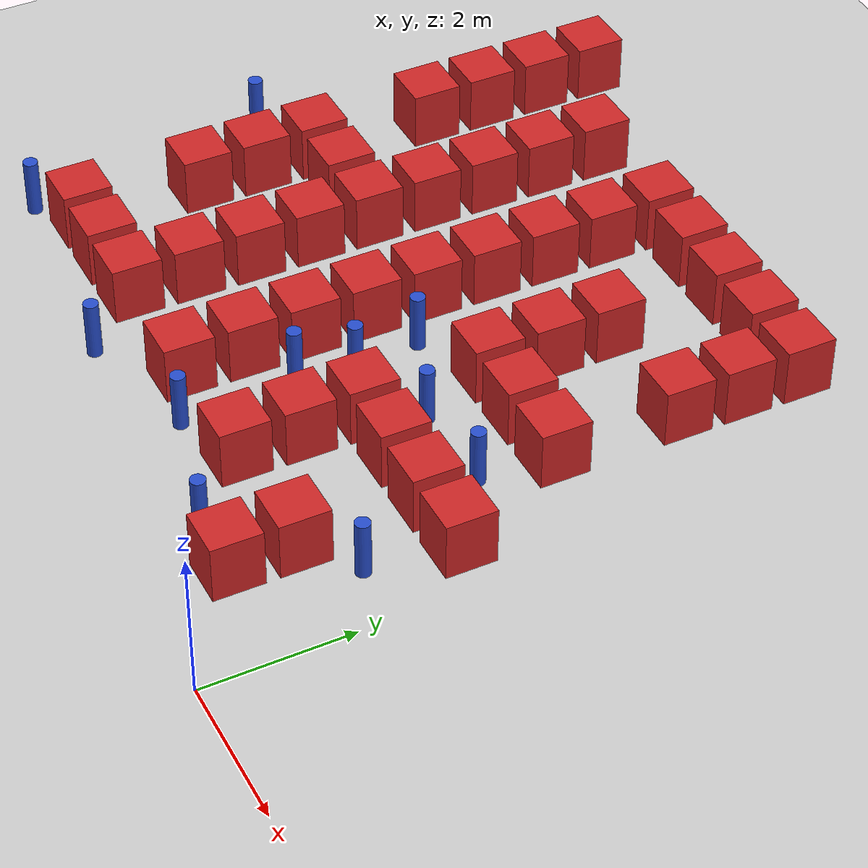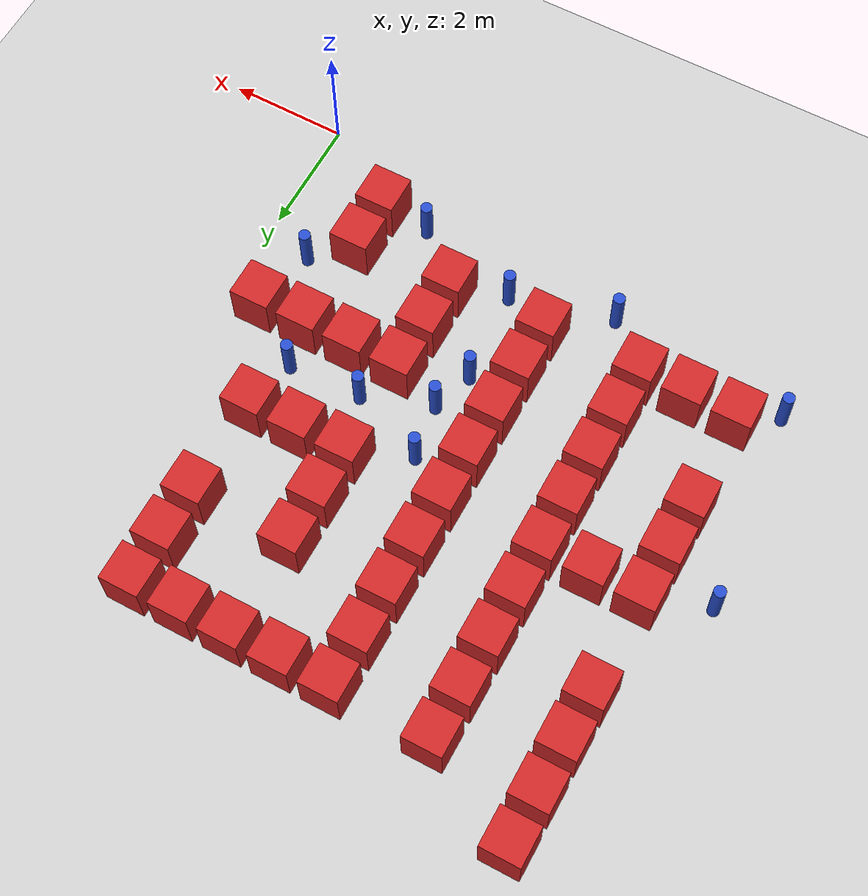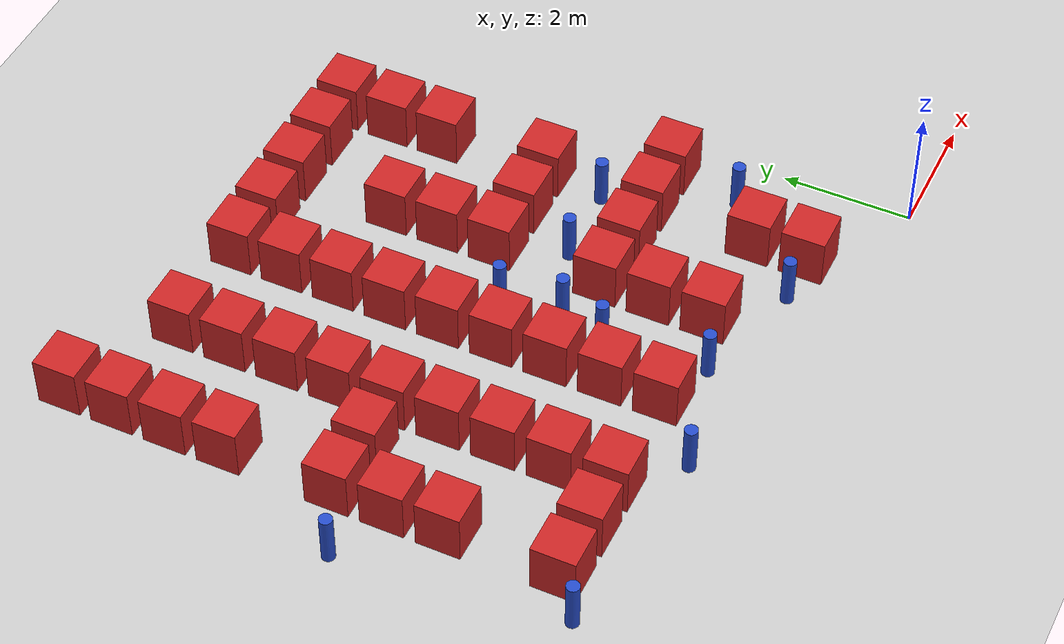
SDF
<sdf version="1.6">
 <world name="default">
  <model name="ground_plane">
   <static>1</static>
   <link name="link">
    <collision name="collision">
     <geometry><plane><normal>0 0 1</normal><size>100 100</size></plane></geometry>
     <surface><friction><ode><mu>100</mu><mu2>50</mu2></ode></friction></surface>
    </collision>
    <visual name="visual">
     <cast_shadows>0</cast_shadows>
     <geometry><plane><normal>0 0 1</normal><size>100 100</size></plane></geometry>
     <material>
      <script><uri>file://media/materials/scripts/gazebo.material</uri><name>Gazebo/Grey</name></script>
     </material>
    </visual>
   </link>
  </model>
  <model name="box_obstacle11">
   <static>0</static>
   <link name="link">
    <pose>0 0 0.1 0 -0 0</pose>
    <inertial>
     <mass>100</mass>
     <inertia>
      <ixx>0.166667</ixx>
      <ixy>0</ixy>
      <ixz>0</ixz>
      <iyy>0.166667</iyy>
      <iyz>0</iyz>
      <izz>0.166667</izz>
     </inertia>
    </inertial>
    <collision name="collision"><geometry><box><size>0.675 0.675 0.8</size></box></geometry></collision>
    <visual name="visual">
     <geometry><box><size>0.675 0.675 0.8</size></box></geometry>
     <material>
      <script><name>Gazebo/Red</name><uri>file://media/materials/scripts/gazebo.material</uri></script>
     </material>
    </visual>
   </link>
   <pose>-8.30097 1.89865 0.299996 4e-06 -0 0.001125</pose>
  </model>
  <model name="box_obstacle12">
   <static>0</static>
   <link name="link">
    <pose>0 0 0.1 0 -0 0</pose>
    <inertial>
     <mass>100</mass>
     <inertia>
      <ixx>0.166667</ixx>
      <ixy>0</ixy>
      <ixz>0</ixz>
      <iyy>0.166667</iyy>
      <iyz>0</iyz>
      <izz>0.166667</izz>
     </inertia>
    </inertial>
    <collision name="collision"><geometry><box><size>0.675 0.675 0.8</size></box></geometry></collision>
    <visual name="visual">
     <geometry><box><size>0.675 0.675 0.8</size></box></geometry>
     <material>
      <script><name>Gazebo/Red</name><uri>file://media/materials/scripts/gazebo.material</uri></script>
     </material>
    </visual>
   </link>
   <pose>-8.30097 3.59865 0.299996 4e-06 -0 0.001125</pose>
  </model>
  <model name="box_obstacle13">
   <static>0</static>
   <link name="link">
    <pose>0 0 0.1 0 -0 0</pose>
    <inertial>
     <mass>100</mass>
     <inertia>
      <ixx>0.166667</ixx>
      <ixy>0</ixy>
      <ixz>0</ixz>
      <iyy>0.166667</iyy>
      <iyz>0</iyz>
      <izz>0.166667</izz>
     </inertia>
    </inertial>
    <collision name="collision"><geometry><box><size>0.675 0.675 0.8</size></box></geometry></collision>
    <visual name="visual">
     <geometry><box><size>0.675 0.675 0.8</size></box></geometry>
     <material>
      <script><name>Gazebo/Red</name><uri>file://media/materials/scripts/gazebo.material</uri></script>
     </material>
    </visual>
   </link>
   <pose>-8.30097 4.44865 0.299996 4e-06 -0 0.001125</pose>
  </model>
  <model name="box_obstacle14">
   <static>0</static>
   <link name="link">
    <pose>0 0 0.1 0 -0 0</pose>
    <inertial>
     <mass>100</mass>
     <inertia>
      <ixx>0.166667</ixx>
      <ixy>0</ixy>
      <ixz>0</ixz>
      <iyy>0.166667</iyy>
      <iyz>0</iyz>
      <izz>0.166667</izz>
     </inertia>
    </inertial>
    <collision name="collision"><geometry><box><size>0.675 0.675 0.8</size></box></geometry></collision>
    <visual name="visual">
     <geometry><box><size>0.675 0.675 0.8</size></box></geometry>
     <material>
      <script><name>Gazebo/Red</name><uri>file://media/materials/scripts/gazebo.material</uri></script>
     </material>
    </visual>
   </link>
   <pose>-8.30097 5.29865 0.299996 4e-06 -0 0.001125</pose>
  </model>
  <model name="box_obstacle15">
   <static>0</static>
   <link name="link">
    <pose>0 0 0.1 0 -0 0</pose>
    <inertial>
     <mass>100</mass>
     <inertia>
      <ixx>0.166667</ixx>
      <ixy>0</ixy>
      <ixz>0</ixz>
      <iyy>0.166667</iyy>
      <iyz>0</iyz>
      <izz>0.166667</izz>
     </inertia>
    </inertial>
    <collision name="collision"><geometry><box><size>0.675 0.675 0.8</size></box></geometry></collision>
    <visual name="visual">
     <geometry><box><size>0.675 0.675 0.8</size></box></geometry>
     <material>
      <script><name>Gazebo/Red</name><uri>file://media/materials/scripts/gazebo.material</uri></script>
     </material>
    </visual>
   </link>
   <pose>-8.30097 6.99865 0.299996 4e-06 -0 0.001125</pose>
  </model>
  <model name="box_obstacle16">
   <static>0</static>
   <link name="link">
    <pose>0 0 0.1 0 -0 0</pose>
    <inertial>
     <mass>100</mass>
     <inertia>
      <ixx>0.166667</ixx>
      <ixy>0</ixy>
      <ixz>0</ixz>
      <iyy>0.166667</iyy>
      <iyz>0</iyz>
      <izz>0.166667</izz>
     </inertia>
    </inertial>
    <collision name="collision"><geometry><box><size>0.675 0.675 0.8</size></box></geometry></collision>
    <visual name="visual">
     <geometry><box><size>0.675 0.675 0.8</size></box></geometry>
     <material>
      <script><name>Gazebo/Red</name><uri>file://media/materials/scripts/gazebo.material</uri></script>
     </material>
    </visual>
   </link>
   <pose>-8.30097 7.84865 0.299996 4e-06 -0 0.001125</pose>
  </model>
  <model name="box_obstacle17">
   <static>0</static>
   <link name="link">
    <pose>0 0 0.1 0 -0 0</pose>
    <inertial>
     <mass>100</mass>
     <inertia>
      <ixx>0.166667</ixx>
      <ixy>0</ixy>
      <ixz>0</ixz>
      <iyy>0.166667</iyy>
      <iyz>0</iyz>
      <izz>0.166667</izz>
     </inertia>
    </inertial>
    <collision name="collision"><geometry><box><size>0.675 0.675 0.8</size></box></geometry></collision>
    <visual name="visual">
     <geometry><box><size>0.675 0.675 0.8</size></box></geometry>
     <material>
      <script><name>Gazebo/Red</name><uri>file://media/materials/scripts/gazebo.material</uri></script>
     </material>
    </visual>
   </link>
   <pose>-8.30097 8.69865 0.299996 4e-06 -0 0.001125</pose>
  </model>
  <model name="box_obstacle18">
   <static>0</static>
   <link name="link">
    <pose>0 0 0.1 0 -0 0</pose>
    <inertial>
     <mass>100</mass>
     <inertia>
      <ixx>0.166667</ixx>
      <ixy>0</ixy>
      <ixz>0</ixz>
      <iyy>0.166667</iyy>
      <iyz>0</iyz>
      <izz>0.166667</izz>
     </inertia>
    </inertial>
    <collision name="collision"><geometry><box><size>0.675 0.675 0.8</size></box></geometry></collision>
    <visual name="visual">
     <geometry><box><size>0.675 0.675 0.8</size></box></geometry>
     <material>
      <script><name>Gazebo/Red</name><uri>file://media/materials/scripts/gazebo.material</uri></script>
     </material>
    </visual>
   </link>
   <pose>-8.30097 9.54865 0.299996 4e-06 -0 0.001125</pose>
  </model>
  <model name="box_obstacle22">
   <static>0</static>
   <link name="link">
    <pose>0 0 0.1 0 -0 0</pose>
    <inertial>
     <mass>100</mass>
     <inertia>
      <ixx>0.166667</ixx>
      <ixy>0</ixy>
      <ixz>0</ixz>
      <iyy>0.166667</iyy>
      <iyz>0</iyz>
      <izz>0.166667</izz>
     </inertia>
    </inertial>
    <collision name="collision"><geometry><box><size>0.675 0.675 0.8</size></box></geometry></collision>
    <visual name="visual">
     <geometry><box><size>0.675 0.675 0.8</size></box></geometry>
     <material>
      <script><name>Gazebo/Red</name><uri>file://media/materials/scripts/gazebo.material</uri></script>
     </material>
    </visual>
   </link>
   <pose>-7.45097 1.89865 0.299996 4e-06 -0 0.001125</pose>
  </model>
  <model name="box_obstacle23">
   <static>0</static>
   <link name="link">
    <pose>0 0 0.1 0 -0 0</pose>
    <inertial>
     <mass>100</mass>
     <inertia>
      <ixx>0.166667</ixx>
      <ixy>0</ixy>
      <ixz>0</ixz>
      <iyy>0.166667</iyy>
      <iyz>0</iyz>
      <izz>0.166667</izz>
     </inertia>
    </inertial>
    <collision name="collision"><geometry><box><size>0.675 0.675 0.8</size></box></geometry></collision>
    <visual name="visual">
     <geometry><box><size>0.675 0.675 0.8</size></box></geometry>
     <material>
      <script><name>Gazebo/Red</name><uri>file://media/materials/scripts/gazebo.material</uri></script>
     </material>
    </visual>
   </link>
   <pose>-7.45097 5.29865 0.299996 4e-06 -0 0.001125</pose>
  </model>
  <model name="box_obstacle33">
   <static>0</static>
   <link name="link">
    <pose>0 0 0.1 0 -0 0</pose>
    <inertial>
     <mass>100</mass>
     <inertia>
      <ixx>0.166667</ixx>
      <ixy>0</ixy>
      <ixz>0</ixz>
      <iyy>0.166667</iyy>
      <iyz>0</iyz>
      <izz>0.166667</izz>
     </inertia>
    </inertial>
    <collision name="collision"><geometry><box><size>0.675 0.675 0.8</size></box></geometry></collision>
    <visual name="visual">
     <geometry><box><size>0.675 0.675 0.8</size></box></geometry>
     <material>
      <script><name>Gazebo/Red</name><uri>file://media/materials/scripts/gazebo.material</uri></script>
     </material>
    </visual>
   </link>
   <pose>-6.60097 1.89865 0.299996 4e-06 -0 0.001125</pose>
  </model>
  <model name="box_obstacle34">
   <static>0</static>
   <link name="link">
    <pose>0 0 0.1 0 -0 0</pose>
    <inertial>
     <mass>100</mass>
     <inertia>
      <ixx>0.166667</ixx>
      <ixy>0</ixy>
      <ixz>0</ixz>
      <iyy>0.166667</iyy>
      <iyz>0</iyz>
      <izz>0.166667</izz>
     </inertia>
    </inertial>
    <collision name="collision"><geometry><box><size>0.675 0.675 0.8</size></box></geometry></collision>
    <visual name="visual">
     <geometry><box><size>0.675 0.675 0.8</size></box></geometry>
     <material>
      <script><name>Gazebo/Red</name><uri>file://media/materials/scripts/gazebo.material</uri></script>
     </material>
    </visual>
   </link>
   <pose>-6.60097 2.74865 0.299996 4e-06 -0 0.001125</pose>
  </model>
  <model name="box_obstacle35">
   <static>0</static>
   <link name="link">
    <pose>0 0 0.1 0 -0 0</pose>
    <inertial>
     <mass>100</mass>
     <inertia>
      <ixx>0.166667</ixx>
      <ixy>0</ixy>
      <ixz>0</ixz>
      <iyy>0.166667</iyy>
      <iyz>0</iyz>
      <izz>0.166667</izz>
     </inertia>
    </inertial>
    <collision name="collision"><geometry><box><size>0.675 0.675 0.8</size></box></geometry></collision>
    <visual name="visual">
     <geometry><box><size>0.675 0.675 0.8</size></box></geometry>
     <material>
      <script><name>Gazebo/Red</name><uri>file://media/materials/scripts/gazebo.material</uri></script>
     </material>
    </visual>
   </link>
   <pose>-6.60097 3.59865 0.299996 4e-06 -0 0.001125</pose>
  </model>
  <model name="box_obstacle36">
   <static>0</static>
   <link name="link">
    <pose>0 0 0.1 0 -0 0</pose>
    <inertial>
     <mass>100</mass>
     <inertia>
      <ixx>0.166667</ixx>
      <ixy>0</ixy>
      <ixz>0</ixz>
      <iyy>0.166667</iyy>
      <iyz>0</iyz>
      <izz>0.166667</izz>
     </inertia>
    </inertial>
    <collision name="collision"><geometry><box><size>0.675 0.675 0.8</size></box></geometry></collision>
    <visual name="visual">
     <geometry><box><size>0.675 0.675 0.8</size></box></geometry>
     <material>
      <script><name>Gazebo/Red</name><uri>file://media/materials/scripts/gazebo.material</uri></script>
     </material>
    </visual>
   </link>
   <pose>-6.60097 4.44865 0.299996 4e-06 -0 0.001125</pose>
  </model>
  <model name="box_obstacle37">
   <static>0</static>
   <link name="link">
    <pose>0 0 0.1 0 -0 0</pose>
    <inertial>
     <mass>100</mass>
     <inertia>
      <ixx>0.166667</ixx>
      <ixy>0</ixy>
      <ixz>0</ixz>
      <iyy>0.166667</iyy>
      <iyz>0</iyz>
      <izz>0.166667</izz>
     </inertia>
    </inertial>
    <collision name="collision"><geometry><box><size>0.675 0.675 0.8</size></box></geometry></collision>
    <visual name="visual">
     <geometry><box><size>0.675 0.675 0.8</size></box></geometry>
     <material>
      <script><name>Gazebo/Red</name><uri>file://media/materials/scripts/gazebo.material</uri></script>
     </material>
    </visual>
   </link>
   <pose>-6.60097 5.29865 0.299996 4e-06 -0 0.001125</pose>
  </model>
  <model name="box_obstacle38">
   <static>0</static>
   <link name="link">
    <pose>0 0 0.1 0 -0 0</pose>
    <inertial>
     <mass>100</mass>
     <inertia>
      <ixx>0.166667</ixx>
      <ixy>0</ixy>
      <ixz>0</ixz>
      <iyy>0.166667</iyy>
      <iyz>0</iyz>
      <izz>0.166667</izz>
     </inertia>
    </inertial>
    <collision name="collision"><geometry><box><size>0.675 0.675 0.8</size></box></geometry></collision>
    <visual name="visual">
     <geometry><box><size>0.675 0.675 0.8</size></box></geometry>
     <material>
      <script><name>Gazebo/Red</name><uri>file://media/materials/scripts/gazebo.material</uri></script>
     </material>
    </visual>
   </link>
   <pose>-6.60097 6.14865 0.299996 4e-06 -0 0.001125</pose>
  </model>
  <model name="box_obstacle39">
   <static>0</static>
   <link name="link">
    <pose>0 0 0.1 0 -0 0</pose>
    <inertial>
     <mass>100</mass>
     <inertia>
      <ixx>0.166667</ixx>
      <ixy>0</ixy>
      <ixz>0</ixz>
      <iyy>0.166667</iyy>
      <iyz>0</iyz>
      <izz>0.166667</izz>
     </inertia>
    </inertial>
    <collision name="collision"><geometry><box><size>0.675 0.675 0.8</size></box></geometry></collision>
    <visual name="visual">
     <geometry><box><size>0.675 0.675 0.8</size></box></geometry>
     <material>
      <script><name>Gazebo/Red</name><uri>file://media/materials/scripts/gazebo.material</uri></script>
     </material>
    </visual>
   </link>
   <pose>-6.60097 6.99865 0.299996 4e-06 -0 0.001125</pose>
  </model>
  <model name="box_obstacle40">
   <static>0</static>
   <link name="link">
    <pose>0 0 0.1 0 -0 0</pose>
    <inertial>
     <mass>100</mass>
     <inertia>
      <ixx>0.166667</ixx>
      <ixy>0</ixy>
      <ixz>0</ixz>
      <iyy>0.166667</iyy>
      <iyz>0</iyz>
      <izz>0.166667</izz>
     </inertia>
    </inertial>
    <collision name="collision"><geometry><box><size>0.675 0.675 0.8</size></box></geometry></collision>
    <visual name="visual">
     <geometry><box><size>0.675 0.675 0.8</size></box></geometry>
     <material>
      <script><name>Gazebo/Red</name><uri>file://media/materials/scripts/gazebo.material</uri></script>
     </material>
    </visual>
   </link>
   <pose>-6.60097 7.84865 0.299996 4e-06 -0 0.001125</pose>
  </model>
  <model name="box_obstacle41">
   <static>0</static>
   <link name="link">
    <pose>0 0 0.1 0 -0 0</pose>
    <inertial>
     <mass>100</mass>
     <inertia>
      <ixx>0.166667</ixx>
      <ixy>0</ixy>
      <ixz>0</ixz>
      <iyy>0.166667</iyy>
      <iyz>0</iyz>
      <izz>0.166667</izz>
     </inertia>
    </inertial>
    <collision name="collision"><geometry><box><size>0.675 0.675 0.8</size></box></geometry></collision>
    <visual name="visual">
     <geometry><box><size>0.675 0.675 0.8</size></box></geometry>
     <material>
      <script><name>Gazebo/Red</name><uri>file://media/materials/scripts/gazebo.material</uri></script>
     </material>
    </visual>
   </link>
   <pose>-6.60097 8.69865 0.299996 4e-06 -0 0.001125</pose>
  </model>
  <model name="box_obstacle54">
   <static>0</static>
   <link name="link">
    <pose>0 0 0.1 0 -0 0</pose>
    <inertial>
     <mass>100</mass>
     <inertia>
      <ixx>0.166667</ixx>
      <ixy>0</ixy>
      <ixz>0</ixz>
      <iyy>0.166667</iyy>
      <iyz>0</iyz>
      <izz>0.166667</izz>
     </inertia>
    </inertial>
    <collision name="collision"><geometry><box><size>0.675 0.675 0.8</size></box></geometry></collision>
    <visual name="visual">
     <geometry><box><size>0.675 0.675 0.8</size></box></geometry>
     <material>
      <script><name>Gazebo/Red</name><uri>file://media/materials/scripts/gazebo.material</uri></script>
     </material>
    </visual>
   </link>
   <pose>-4.90097 1.89865 0.299996 4e-06 -0 0.001125</pose>
  </model>
  <model name="box_obstacle55">
   <static>0</static>
   <link name="link">
    <pose>0 0 0.1 0 -0 0</pose>
    <inertial>
     <mass>100</mass>
     <inertia>
      <ixx>0.166667</ixx>
      <ixy>0</ixy>
      <ixz>0</ixz>
      <iyy>0.166667</iyy>
      <iyz>0</iyz>
      <izz>0.166667</izz>
     </inertia>
    </inertial>
    <collision name="collision"><geometry><box><size>0.675 0.675 0.8</size></box></geometry></collision>
    <visual name="visual">
     <geometry><box><size>0.675 0.675 0.8</size></box></geometry>
     <material>
      <script><name>Gazebo/Red</name><uri>file://media/materials/scripts/gazebo.material</uri></script>
     </material>
    </visual>
   </link>
   <pose>-4.90097 2.74865 0.299996 4e-06 -0 0.001125</pose>
  </model>
  <model name="box_obstacle56">
   <static>0</static>
   <link name="link">
    <pose>0 0 0.1 0 -0 0</pose>
    <inertial>
     <mass>100</mass>
     <inertia>
      <ixx>0.166667</ixx>
      <ixy>0</ixy>
      <ixz>0</ixz>
      <iyy>0.166667</iyy>
      <iyz>0</iyz>
      <izz>0.166667</izz>
     </inertia>
    </inertial>
    <collision name="collision"><geometry><box><size>0.675 0.675 0.8</size></box></geometry></collision>
    <visual name="visual">
     <geometry><box><size>0.675 0.675 0.8</size></box></geometry>
     <material>
      <script><name>Gazebo/Red</name><uri>file://media/materials/scripts/gazebo.material</uri></script>
     </material>
    </visual>
   </link>
   <pose>-4.90097 3.59865 0.299996 4e-06 -0 0.001125</pose>
  </model>
  <model name="box_obstacle57">
   <static>0</static>
   <link name="link">
    <pose>0 0 0.1 0 -0 0</pose>
    <inertial>
     <mass>100</mass>
     <inertia>
      <ixx>0.166667</ixx>
      <ixy>0</ixy>
      <ixz>0</ixz>
      <iyy>0.166667</iyy>
      <iyz>0</iyz>
      <izz>0.166667</izz>
     </inertia>
    </inertial>
    <collision name="collision"><geometry><box><size>0.675 0.675 0.8</size></box></geometry></collision>
    <visual name="visual">
     <geometry><box><size>0.675 0.675 0.8</size></box></geometry>
     <material>
      <script><name>Gazebo/Red</name><uri>file://media/materials/scripts/gazebo.material</uri></script>
     </material>
    </visual>
   </link>
   <pose>-4.90097 4.44865 0.299996 4e-06 -0 0.001125</pose>
  </model>
  <model name="box_obstacle58">
   <static>0</static>
   <link name="link">
    <pose>0 0 0.1 0 -0 0</pose>
    <inertial>
     <mass>100</mass>
     <inertia>
      <ixx>0.166667</ixx>
      <ixy>0</ixy>
      <ixz>0</ixz>
      <iyy>0.166667</iyy>
      <iyz>0</iyz>
      <izz>0.166667</izz>
     </inertia>
    </inertial>
    <collision name="collision"><geometry><box><size>0.675 0.675 0.8</size></box></geometry></collision>
    <visual name="visual">
     <geometry><box><size>0.675 0.675 0.8</size></box></geometry>
     <material>
      <script><name>Gazebo/Red</name><uri>file://media/materials/scripts/gazebo.material</uri></script>
     </material>
    </visual>
   </link>
   <pose>-4.90097 5.29865 0.299996 4e-06 -0 0.001125</pose>
  </model>
  <model name="box_obstacle59">
   <static>0</static>
   <link name="link">
    <pose>0 0 0.1 0 -0 0</pose>
    <inertial>
     <mass>100</mass>
     <inertia>
      <ixx>0.166667</ixx>
      <ixy>0</ixy>
      <ixz>0</ixz>
      <iyy>0.166667</iyy>
      <iyz>0</iyz>
      <izz>0.166667</izz>
     </inertia>
    </inertial>
    <collision name="collision"><geometry><box><size>0.675 0.675 0.8</size></box></geometry></collision>
    <visual name="visual">
     <geometry><box><size>0.675 0.675 0.8</size></box></geometry>
     <material>
      <script><name>Gazebo/Red</name><uri>file://media/materials/scripts/gazebo.material</uri></script>
     </material>
    </visual>
   </link>
   <pose>-4.90097 6.14865 0.299996 4e-06 -0 0.001125</pose>
  </model>
  <model name="box_obstacle60">
   <static>0</static>
   <link name="link">
    <pose>0 0 0.1 0 -0 0</pose>
    <inertial>
     <mass>100</mass>
     <inertia>
      <ixx>0.166667</ixx>
      <ixy>0</ixy>
      <ixz>0</ixz>
      <iyy>0.166667</iyy>
      <iyz>0</iyz>
      <izz>0.166667</izz>
     </inertia>
    </inertial>
    <collision name="collision"><geometry><box><size>0.675 0.675 0.8</size></box></geometry></collision>
    <visual name="visual">
     <geometry><box><size>0.675 0.675 0.8</size></box></geometry>
     <material>
      <script><name>Gazebo/Red</name><uri>file://media/materials/scripts/gazebo.material</uri></script>
     </material>
    </visual>
   </link>
   <pose>-4.90097 6.99865 0.299996 4e-06 -0 0.001125</pose>
  </model>
  <model name="box_obstacle61">
   <static>0</static>
   <link name="link">
    <pose>0 0 0.1 0 -0 0</pose>
    <inertial>
     <mass>100</mass>
     <inertia>
      <ixx>0.166667</ixx>
      <ixy>0</ixy>
      <ixz>0</ixz>
      <iyy>0.166667</iyy>
      <iyz>0</iyz>
      <izz>0.166667</izz>
     </inertia>
    </inertial>
    <collision name="collision"><geometry><box><size>0.675 0.675 0.8</size></box></geometry></collision>
    <visual name="visual">
     <geometry><box><size>0.675 0.675 0.8</size></box></geometry>
     <material>
      <script><name>Gazebo/Red</name><uri>file://media/materials/scripts/gazebo.material</uri></script>
     </material>
    </visual>
   </link>
   <pose>-4.90097 7.84865 0.299996 4e-06 -0 0.001125</pose>
  </model>
  <model name="box_obstacle62">
   <static>0</static>
   <link name="link">
    <pose>0 0 0.1 0 -0 0</pose>
    <inertial>
     <mass>100</mass>
     <inertia>
      <ixx>0.166667</ixx>
      <ixy>0</ixy>
      <ixz>0</ixz>
      <iyy>0.166667</iyy>
      <iyz>0</iyz>
      <izz>0.166667</izz>
     </inertia>
    </inertial>
    <collision name="collision"><geometry><box><size>0.675 0.675 0.8</size></box></geometry></collision>
    <visual name="visual">
     <geometry><box><size>0.675 0.675 0.8</size></box></geometry>
     <material>
      <script><name>Gazebo/Red</name><uri>file://media/materials/scripts/gazebo.material</uri></script>
     </material>
    </visual>
   </link>
   <pose>-4.90097 8.69865 0.299996 4e-06 -0 0.001125</pose>
  </model>
  <model name="box_obstacle67">
   <static>0</static>
   <link name="link">
    <pose>0 0 0.1 0 -0 0</pose>
    <inertial>
     <mass>100</mass>
     <inertia>
      <ixx>0.166667</ixx>
      <ixy>0</ixy>
      <ixz>0</ixz>
      <iyy>0.166667</iyy>
      <iyz>0</iyz>
      <izz>0.166667</izz>
     </inertia>
    </inertial>
    <collision name="collision"><geometry><box><size>0.675 0.675 0.8</size></box></geometry></collision>
    <visual name="visual">
     <geometry><box><size>0.675 0.675 0.8</size></box></geometry>
     <material>
      <script><name>Gazebo/Red</name><uri>file://media/materials/scripts/gazebo.material</uri></script>
     </material>
    </visual>
   </link>
   <pose>-4.05097 8.69865 0.299996 4e-06 -0 0.001125</pose>
  </model>
  <model name="box_obstacle78">
   <static>0</static>
   <link name="link">
    <pose>0 0 0.1 0 -0 0</pose>
    <inertial>
     <mass>100</mass>
     <inertia>
      <ixx>0.166667</ixx>
      <ixy>0</ixy>
      <ixz>0</ixz>
      <iyy>0.166667</iyy>
      <iyz>0</iyz>
      <izz>0.166667</izz>
     </inertia>
    </inertial>
    <collision name="collision"><geometry><box><size>0.675 0.675 0.8</size></box></geometry></collision>
    <visual name="visual">
     <geometry><box><size>0.675 0.675 0.8</size></box></geometry>
     <material>
      <script><name>Gazebo/Red</name><uri>file://media/materials/scripts/gazebo.material</uri></script>
     </material>
    </visual>
   </link>
   <pose>-3.20097 1.89865 0.299996 4e-06 -0 0.001125</pose>
  </model>
  <model name="box_obstacle79">
   <static>0</static>
   <link name="link">
    <pose>0 0 0.1 0 -0 0</pose>
    <inertial>
     <mass>100</mass>
     <inertia>
      <ixx>0.166667</ixx>
      <ixy>0</ixy>
      <ixz>0</ixz>
      <iyy>0.166667</iyy>
      <iyz>0</iyz>
      <izz>0.166667</izz>
     </inertia>
    </inertial>
    <collision name="collision"><geometry><box><size>0.675 0.675 0.8</size></box></geometry></collision>
    <visual name="visual">
     <geometry><box><size>0.675 0.675 0.8</size></box></geometry>
     <material>
      <script><name>Gazebo/Red</name><uri>file://media/materials/scripts/gazebo.material</uri></script>
     </material>
    </visual>
   </link>
   <pose>-3.20097 2.74865 0.299996 4e-06 -0 0.001125</pose>
  </model>
  <model name="box_obstacle80">
   <static>0</static>
   <link name="link">
    <pose>0 0 0.1 0 -0 0</pose>
    <inertial>
     <mass>100</mass>
     <inertia>
      <ixx>0.166667</ixx>
      <ixy>0</ixy>
      <ixz>0</ixz>
      <iyy>0.166667</iyy>
      <iyz>0</iyz>
      <izz>0.166667</izz>
     </inertia>
    </inertial>
    <collision name="collision"><geometry><box><size>0.675 0.675 0.8</size></box></geometry></collision>
    <visual name="visual">
     <geometry><box><size>0.675 0.675 0.8</size></box></geometry>
     <material>
      <script><name>Gazebo/Red</name><uri>file://media/materials/scripts/gazebo.material</uri></script>
     </material>
    </visual>
   </link>
   <pose>-3.20097 3.59865 0.299996 4e-06 -0 0.001125</pose>
  </model>
  <model name="box_obstacle81">
   <static>0</static>
   <link name="link">
    <pose>0 0 0.1 0 -0 0</pose>
    <inertial>
     <mass>100</mass>
     <inertia>
      <ixx>0.166667</ixx>
      <ixy>0</ixy>
      <ixz>0</ixz>
      <iyy>0.166667</iyy>
      <iyz>0</iyz>
      <izz>0.166667</izz>
     </inertia>
    </inertial>
    <collision name="collision"><geometry><box><size>0.675 0.675 0.8</size></box></geometry></collision>
    <visual name="visual">
     <geometry><box><size>0.675 0.675 0.8</size></box></geometry>
     <material>
      <script><name>Gazebo/Red</name><uri>file://media/materials/scripts/gazebo.material</uri></script>
     </material>
    </visual>
   </link>
   <pose>-3.20097 5.29865 0.299996 4e-06 -0 0.001125</pose>
  </model>
  <model name="box_obstacle82">
   <static>0</static>
   <link name="link">
    <pose>0 0 0.1 0 -0 0</pose>
    <inertial>
     <mass>100</mass>
     <inertia>
      <ixx>0.166667</ixx>
      <ixy>0</ixy>
      <ixz>0</ixz>
      <iyy>0.166667</iyy>
      <iyz>0</iyz>
      <izz>0.166667</izz>
     </inertia>
    </inertial>
    <collision name="collision"><geometry><box><size>0.675 0.675 0.8</size></box></geometry></collision>
    <visual name="visual">
     <geometry><box><size>0.675 0.675 0.8</size></box></geometry>
     <material>
      <script><name>Gazebo/Red</name><uri>file://media/materials/scripts/gazebo.material</uri></script>
     </material>
    </visual>
   </link>
   <pose>-3.20097 6.14865 0.299996 4e-06 -0 0.001125</pose>
  </model>
  <model name="box_obstacle83">
   <static>0</static>
   <link name="link">
    <pose>0 0 0.1 0 -0 0</pose>
    <inertial>
     <mass>100</mass>
     <inertia>
      <ixx>0.166667</ixx>
      <ixy>0</ixy>
      <ixz>0</ixz>
      <iyy>0.166667</iyy>
      <iyz>0</iyz>
      <izz>0.166667</izz>
     </inertia>
    </inertial>
    <collision name="collision"><geometry><box><size>0.675 0.675 0.8</size></box></geometry></collision>
    <visual name="visual">
     <geometry><box><size>0.675 0.675 0.8</size></box></geometry>
     <material>
      <script><name>Gazebo/Red</name><uri>file://media/materials/scripts/gazebo.material</uri></script>
     </material>
    </visual>
   </link>
   <pose>-3.20097 6.99865 0.299996 4e-06 -0 0.001125</pose>
  </model>
  <model name="box_obstacle84">
   <static>0</static>
   <link name="link">
    <pose>0 0 0.1 0 -0 0</pose>
    <inertial>
     <mass>100</mass>
     <inertia>
      <ixx>0.166667</ixx>
      <ixy>0</ixy>
      <ixz>0</ixz>
      <iyy>0.166667</iyy>
      <iyz>0</iyz>
      <izz>0.166667</izz>
     </inertia>
    </inertial>
    <collision name="collision"><geometry><box><size>0.675 0.675 0.8</size></box></geometry></collision>
    <visual name="visual">
     <geometry><box><size>0.675 0.675 0.8</size></box></geometry>
     <material>
      <script><name>Gazebo/Red</name><uri>file://media/materials/scripts/gazebo.material</uri></script>
     </material>
    </visual>
   </link>
   <pose>-3.20097 8.69865 0.299996 4e-06 -0 0.001125</pose>
  </model>
  <model name="box_obstacle88">
   <static>0</static>
   <link name="link">
    <pose>0 0 0.1 0 -0 0</pose>
    <inertial>
     <mass>100</mass>
     <inertia>
      <ixx>0.166667</ixx>
      <ixy>0</ixy>
      <ixz>0</ixz>
      <iyy>0.166667</iyy>
      <iyz>0</iyz>
      <izz>0.166667</izz>
     </inertia>
    </inertial>
    <collision name="collision"><geometry><box><size>0.675 0.675 0.8</size></box></geometry></collision>
    <visual name="visual">
     <geometry><box><size>0.675 0.675 0.8</size></box></geometry>
     <material>
      <script><name>Gazebo/Red</name><uri>file://media/materials/scripts/gazebo.material</uri></script>
     </material>
    </visual>
   </link>
   <pose>-2.35097 3.59865 0.299996 4e-06 -0 0.001125</pose>
  </model>
  <model name="box_obstacle89">
   <static>0</static>
   <link name="link">
    <pose>0 0 0.1 0 -0 0</pose>
    <inertial>
     <mass>100</mass>
     <inertia>
      <ixx>0.166667</ixx>
      <ixy>0</ixy>
      <ixz>0</ixz>
      <iyy>0.166667</iyy>
      <iyz>0</iyz>
      <izz>0.166667</izz>
     </inertia>
    </inertial>
    <collision name="collision"><geometry><box><size>0.675 0.675 0.8</size></box></geometry></collision>
    <visual name="visual">
     <geometry><box><size>0.675 0.675 0.8</size></box></geometry>
     <material>
      <script><name>Gazebo/Red</name><uri>file://media/materials/scripts/gazebo.material</uri></script>
     </material>
    </visual>
   </link>
   <pose>-2.35097 5.29865 0.299996 4e-06 -0 0.001125</pose>
  </model>
  <model name="box_obstacle90">
   <static>0</static>
   <link name="link">
    <pose>0 0 0.1 0 -0 0</pose>
    <inertial>
     <mass>100</mass>
     <inertia>
      <ixx>0.166667</ixx>
      <ixy>0</ixy>
      <ixz>0</ixz>
      <iyy>0.166667</iyy>
      <iyz>0</iyz>
      <izz>0.166667</izz>
     </inertia>
    </inertial>
    <collision name="collision"><geometry><box><size>0.675 0.675 0.8</size></box></geometry></collision>
    <visual name="visual">
     <geometry><box><size>0.675 0.675 0.8</size></box></geometry>
     <material>
      <script><name>Gazebo/Red</name><uri>file://media/materials/scripts/gazebo.material</uri></script>
     </material>
    </visual>
   </link>
   <pose>-2.35097 8.69865 0.299996 4e-06 -0 0.001125</pose>
  </model>
  <model name="box_obstacle99">
   <static>0</static>
   <link name="link">
    <pose>0 0 0.1 0 -0 0</pose>
    <inertial>
     <mass>100</mass>
     <inertia>
      <ixx>0.166667</ixx>
      <ixy>0</ixy>
      <ixz>0</ixz>
      <iyy>0.166667</iyy>
      <iyz>0</iyz>
      <izz>0.166667</izz>
     </inertia>
    </inertial>
    <collision name="collision"><geometry><box><size>0.675 0.675 0.8</size></box></geometry></collision>
    <visual name="visual">
     <geometry><box><size>0.675 0.675 0.8</size></box></geometry>
     <material>
      <script><name>Gazebo/Red</name><uri>file://media/materials/scripts/gazebo.material</uri></script>
     </material>
    </visual>
   </link>
   <pose>-1.50097 1.04865 0.299996 4e-06 -0 0.001125</pose>
  </model>
  <model name="box_obstacle100">
   <static>0</static>
   <link name="link">
    <pose>0 0 0.1 0 -0 0</pose>
    <inertial>
     <mass>100</mass>
     <inertia>
      <ixx>0.166667</ixx>
      <ixy>0</ixy>
      <ixz>0</ixz>
      <iyy>0.166667</iyy>
      <iyz>0</iyz>
      <izz>0.166667</izz>
     </inertia>
    </inertial>
    <collision name="collision"><geometry><box><size>0.675 0.675 0.8</size></box></geometry></collision>
    <visual name="visual">
     <geometry><box><size>0.675 0.675 0.8</size></box></geometry>
     <material>
      <script><name>Gazebo/Red</name><uri>file://media/materials/scripts/gazebo.material</uri></script>
     </material>
    </visual>
   </link>
   <pose>-1.50097 1.89865 0.299996 4e-06 -0 0.001125</pose>
  </model>
  <model name="box_obstacle101">
   <static>0</static>
   <link name="link">
    <pose>0 0 0.1 0 -0 0</pose>
    <inertial>
     <mass>100</mass>
     <inertia>
      <ixx>0.166667</ixx>
      <ixy>0</ixy>
      <ixz>0</ixz>
      <iyy>0.166667</iyy>
      <iyz>0</iyz>
      <izz>0.166667</izz>
     </inertia>
    </inertial>
    <collision name="collision"><geometry><box><size>0.675 0.675 0.8</size></box></geometry></collision>
    <visual name="visual">
     <geometry><box><size>0.675 0.675 0.8</size></box></geometry>
     <material>
      <script><name>Gazebo/Red</name><uri>file://media/materials/scripts/gazebo.material</uri></script>
     </material>
    </visual>
   </link>
   <pose>-1.50097 3.59865 0.299996 4e-06 -0 0.001125</pose>
  </model>
  <model name="box_obstacle102">
   <static>0</static>
   <link name="link">
    <pose>0 0 0.1 0 -0 0</pose>
    <inertial>
     <mass>100</mass>
     <inertia>
      <ixx>0.166667</ixx>
      <ixy>0</ixy>
      <ixz>0</ixz>
      <iyy>0.166667</iyy>
      <iyz>0</iyz>
      <izz>0.166667</izz>
     </inertia>
    </inertial>
    <collision name="collision"><geometry><box><size>0.675 0.675 0.8</size></box></geometry></collision>
    <visual name="visual">
     <geometry><box><size>0.675 0.675 0.8</size></box></geometry>
     <material>
      <script><name>Gazebo/Red</name><uri>file://media/materials/scripts/gazebo.material</uri></script>
     </material>
    </visual>
   </link>
   <pose>-1.50097 5.29865 0.299996 4e-06 -0 0.001125</pose>
  </model>
  <model name="box_obstacle103">
   <static>0</static>
   <link name="link">
    <pose>0 0 0.1 0 -0 0</pose>
    <inertial>
     <mass>100</mass>
     <inertia>
      <ixx>0.166667</ixx>
      <ixy>0</ixy>
      <ixz>0</ixz>
      <iyy>0.166667</iyy>
      <iyz>0</iyz>
      <izz>0.166667</izz>
     </inertia>
    </inertial>
    <collision name="collision"><geometry><box><size>0.675 0.675 0.8</size></box></geometry></collision>
    <visual name="visual">
     <geometry><box><size>0.675 0.675 0.8</size></box></geometry>
     <material>
      <script><name>Gazebo/Red</name><uri>file://media/materials/scripts/gazebo.material</uri></script>
     </material>
    </visual>
   </link>
   <pose>-1.50097 6.99865 0.299996 4e-06 -0 0.001125</pose>
  </model>
  <model name="box_obstacle104">
   <static>0</static>
   <link name="link">
    <pose>0 0 0.1 0 -0 0</pose>
    <inertial>
     <mass>100</mass>
     <inertia>
      <ixx>0.166667</ixx>
      <ixy>0</ixy>
      <ixz>0</ixz>
      <iyy>0.166667</iyy>
      <iyz>0</iyz>
      <izz>0.166667</izz>
     </inertia>
    </inertial>
    <collision name="collision"><geometry><box><size>0.675 0.675 0.8</size></box></geometry></collision>
    <visual name="visual">
     <geometry><box><size>0.675 0.675 0.8</size></box></geometry>
     <material>
      <script><name>Gazebo/Red</name><uri>file://media/materials/scripts/gazebo.material</uri></script>
     </material>
    </visual>
   </link>
   <pose>-1.50097 7.84865 0.299996 4e-06 -0 0.001125</pose>
  </model>
  <model name="box_obstacle105">
   <static>0</static>
   <link name="link">
    <pose>0 0 0.1 0 -0 0</pose>
    <inertial>
     <mass>100</mass>
     <inertia>
      <ixx>0.166667</ixx>
      <ixy>0</ixy>
      <ixz>0</ixz>
      <iyy>0.166667</iyy>
      <iyz>0</iyz>
      <izz>0.166667</izz>
     </inertia>
    </inertial>
    <collision name="collision"><geometry><box><size>0.675 0.675 0.8</size></box></geometry></collision>
    <visual name="visual">
     <geometry><box><size>0.675 0.675 0.8</size></box></geometry>
     <material>
      <script><name>Gazebo/Red</name><uri>file://media/materials/scripts/gazebo.material</uri></script>
     </material>
    </visual>
   </link>
   <pose>-1.50097 8.69865 0.299996 4e-06 -0 0.001125</pose>
  </model>
  <model name="box_obstacle109">
   <static>0</static>
   <link name="link">
    <pose>0 0 0.1 0 -0 0</pose>
    <inertial>
     <mass>100</mass>
     <inertia>
      <ixx>0.166667</ixx>
      <ixy>0</ixy>
      <ixz>0</ixz>
      <iyy>0.166667</iyy>
      <iyz>0</iyz>
      <izz>0.166667</izz>
     </inertia>
    </inertial>
    <collision name="collision"><geometry><box><size>0.675 0.675 0.8</size></box></geometry></collision>
    <visual name="visual">
     <geometry><box><size>0.675 0.675 0.8</size></box></geometry>
     <material>
      <script><name>Gazebo/Red</name><uri>file://media/materials/scripts/gazebo.material</uri></script>
     </material>
    </visual>
   </link>
   <pose>-0.65097 3.59865 0.299996 4e-06 -0 0.001125</pose>
  </model>
  <model name="cylinder_obstacle20">
   <static>0</static>
   <link name="link">
    <pose>0 0 1 0 -0 0</pose>
    <inertial>
     <mass>100</mass>
     <inertia>
      <ixx>0.166667</ixx>
      <ixy>0</ixy>
      <ixz>0</ixz>
      <iyy>0.166667</iyy>
      <iyz>0</iyz>
      <izz>0.166667</izz>
     </inertia>
    </inertial>
    <collision name="collision">
     <geometry><cylinder><radius>0.1</radius><length>0.8</length></cylinder></geometry>
    </collision>
    <visual name="visual">
     <geometry><cylinder><radius>0.1</radius><length>0.8</length></cylinder></geometry>
     <material>
      <script><name>Gazebo/Blue</name><uri>file://media/materials/scripts/gazebo.material</uri></script>
     </material>
    </visual>
   </link>
   <pose>-4.16574 4.81227 -0.6 3e-06 1e-06 0.003884</pose>
  </model>
  <model name="cylinder_obstacle31">
   <static>0</static>
   <link name="link">
    <pose>0 0 1 0 -0 0</pose>
    <inertial>
     <mass>100</mass>
     <inertia>
      <ixx>0.166667</ixx>
      <ixy>0</ixy>
      <ixz>0</ixz>
      <iyy>0.166667</iyy>
      <iyz>0</iyz>
      <izz>0.166667</izz>
     </inertia>
    </inertial>
    <collision name="collision">
     <geometry><cylinder><radius>0.1</radius><length>0.8</length></cylinder></geometry>
    </collision>
    <visual name="visual">
     <geometry><cylinder><radius>0.1</radius><length>0.8</length></cylinder></geometry>
     <material>
      <script><name>Gazebo/Blue</name><uri>file://media/materials/scripts/gazebo.material</uri></script>
     </material>
    </visual>
   </link>
   <pose>-4.1136 1.5536 -0.6 3e-06 1e-06 0.003884</pose>
  </model>
  <model name="cylinder_obstacle57">
   <static>0</static>
   <link name="link">
    <pose>0 0 1 0 -0 0</pose>
    <inertial>
     <mass>100</mass>
     <inertia>
      <ixx>0.166667</ixx>
      <ixy>0</ixy>
      <ixz>0</ixz>
      <iyy>0.166667</iyy>
      <iyz>0</iyz>
      <izz>0.166667</izz>
     </inertia>
    </inertial>
    <collision name="collision">
     <geometry><cylinder><radius>0.1</radius><length>0.8</length></cylinder></geometry>
    </collision>
    <visual name="visual">
     <geometry><cylinder><radius>0.1</radius><length>0.8</length></cylinder></geometry>
     <material>
      <script><name>Gazebo/Blue</name><uri>file://media/materials/scripts/gazebo.material</uri></script>
     </material>
    </visual>
   </link>
   <pose>-5.84699 1.1079 -0.6 3e-06 1e-06 0.003884</pose>
  </model>
  <model name="cylinder_obstacle67">
   <static>0</static>
   <link name="link">
    <pose>0 0 1 0 -0 0</pose>
    <inertial>
     <mass>100</mass>
     <inertia>
      <ixx>0.166667</ixx>
      <ixy>0</ixy>
      <ixz>0</ixz>
      <iyy>0.166667</iyy>
      <iyz>0</iyz>
      <izz>0.166667</izz>
     </inertia>
    </inertial>
    <collision name="collision">
     <geometry><cylinder><radius>0.1</radius><length>0.8</length></cylinder></geometry>
    </collision>
    <visual name="visual">
     <geometry><cylinder><radius>0.1</radius><length>0.8</length></cylinder></geometry>
     <material>
      <script><name>Gazebo/Blue</name><uri>file://media/materials/scripts/gazebo.material</uri></script>
     </material>
    </visual>
   </link>
   <pose>-2.87257 4.29579 -0.6 3e-06 1e-06 0.003884</pose>
  </model>
  <model name="cylinder_obstacle74">
   <static>0</static>
   <link name="link">
    <pose>0 0 1 0 -0 0</pose>
    <inertial>
     <mass>100</mass>
     <inertia>
      <ixx>0.166667</ixx>
      <ixy>0</ixy>
      <ixz>0</ixz>
      <iyy>0.166667</iyy>
      <iyz>0</iyz>
      <izz>0.166667</izz>
     </inertia>
    </inertial>
    <collision name="collision">
     <geometry><cylinder><radius>0.1</radius><length>0.8</length></cylinder></geometry>
    </collision>
    <visual name="visual">
     <geometry><cylinder><radius>0.1</radius><length>0.8</length></cylinder></geometry>
     <material>
      <script><name>Gazebo/Blue</name><uri>file://media/materials/scripts/gazebo.material</uri></script>
     </material>
    </visual>
   </link>
   <pose>-0.830103 2.45805 -0.6 3e-06 1e-06 0.003884</pose>
  </model>
  <model name="cylinder_obstacle77">
   <static>0</static>
   <link name="link">
    <pose>0 0 1 0 -0 0</pose>
    <inertial>
     <mass>100</mass>
     <inertia>
      <ixx>0.166667</ixx>
      <ixy>0</ixy>
      <ixz>0</ixz>
      <iyy>0.166667</iyy>
      <iyz>0</iyz>
      <izz>0.166667</izz>
     </inertia>
    </inertial>
    <collision name="collision">
     <geometry><cylinder><radius>0.1</radius><length>0.8</length></cylinder></geometry>
    </collision>
    <visual name="visual">
     <geometry><cylinder><radius>0.1</radius><length>0.8</length></cylinder></geometry>
     <material>
      <script><name>Gazebo/Blue</name><uri>file://media/materials/scripts/gazebo.material</uri></script>
     </material>
    </visual>
   </link>
   <pose>-4.24512 3.1537 -0.6 3e-06 1e-06 0.003884</pose>
  </model>
  <model name="cylinder_obstacle86">
   <static>0</static>
   <link name="link">
    <pose>0 0 1 0 -0 0</pose>
    <inertial>
     <mass>100</mass>
     <inertia>
      <ixx>0.166667</ixx>
      <ixy>0</ixy>
      <ixz>0</ixz>
      <iyy>0.166667</iyy>
      <iyz>0</iyz>
      <izz>0.166667</izz>
     </inertia>
    </inertial>
    <collision name="collision">
     <geometry><cylinder><radius>0.1</radius><length>0.8</length></cylinder></geometry>
    </collision>
    <visual name="visual">
     <geometry><cylinder><radius>0.1</radius><length>0.8</length></cylinder></geometry>
     <material>
      <script><name>Gazebo/Blue</name><uri>file://media/materials/scripts/gazebo.material</uri></script>
     </material>
    </visual>
   </link>
   <pose>-2.3163 1.05619 -0.6 3e-06 1e-06 0.003884</pose>
  </model>
  <model name="cylinder_obstacle89">
   <static>0</static>
   <link name="link">
    <pose>0 0 1 0 -0 0</pose>
    <inertial>
     <mass>100</mass>
     <inertia>
      <ixx>0.166667</ixx>
      <ixy>0</ixy>
      <ixz>0</ixz>
      <iyy>0.166667</iyy>
      <iyz>0</iyz>
      <izz>0.166667</izz>
     </inertia>
    </inertial>
    <collision name="collision">
     <geometry><cylinder><radius>0.1</radius><length>0.8</length></cylinder></geometry>
    </collision>
    <visual name="visual">
     <geometry><cylinder><radius>0.1</radius><length>0.8</length></cylinder></geometry>
     <material>
      <script><name>Gazebo/Blue</name><uri>file://media/materials/scripts/gazebo.material</uri></script>
     </material>
    </visual>
   </link>
   <pose>-1.61212 4.34445 -0.6 3e-06 1e-06 0.003884</pose>
  </model>
  <model name="cylinder_obstacle91">
   <static>0</static>
   <link name="link">
    <pose>0 0 1 0 -0 0</pose>
    <inertial>
     <mass>100</mass>
     <inertia>
      <ixx>0.166667</ixx>
      <ixy>0</ixy>
      <ixz>0</ixz>
      <iyy>0.166667</iyy>
      <iyz>0</iyz>
      <izz>0.166667</izz>
     </inertia>
    </inertial>
    <collision name="collision">
     <geometry><cylinder><radius>0.1</radius><length>0.8</length></cylinder></geometry>
    </collision>
    <visual name="visual">
     <geometry><cylinder><radius>0.1</radius><length>0.8</length></cylinder></geometry>
     <material>
      <script><name>Gazebo/Blue</name><uri>file://media/materials/scripts/gazebo.material</uri></script>
     </material>
    </visual>
   </link>
   <pose>-9.34018 4.88821 -0.6 3e-06 1e-06 0.003884</pose>
  </model>
  <model name="cylinder_obstacle94">
   <static>0</static>
   <link name="link">
    <pose>0 0 1 0 -0 0</pose>
    <inertial>
     <mass>100</mass>
     <inertia>
      <ixx>0.166667</ixx>
      <ixy>0</ixy>
      <ixz>0</ixz>
      <iyy>0.166667</iyy>
      <iyz>0</iyz>
      <izz>0.166667</izz>
     </inertia>
    </inertial>
    <collision name="collision">
     <geometry><cylinder><radius>0.1</radius><length>0.8</length></cylinder></geometry>
    </collision>
    <visual name="visual">
     <geometry><cylinder><radius>0.1</radius><length>0.8</length></cylinder></geometry>
     <material>
      <script><name>Gazebo/Blue</name><uri>file://media/materials/scripts/gazebo.material</uri></script>
     </material>
    </visual>
   </link>
   <pose>-8.94191 1.46301 -0.6 3e-06 1e-06 0.003884</pose>
  </model>
  <model name="cylinder_obstacle98">
   <static>0</static>
   <link name="link">
    <pose>0 0 1 0 -0 0</pose>
    <inertial>
     <mass>100</mass>
     <inertia>
      <ixx>0.166667</ixx>
      <ixy>0</ixy>
      <ixz>0</ixz>
      <iyy>0.166667</iyy>
      <iyz>0</iyz>
      <izz>0.166667</izz>
     </inertia>
    </inertial>
    <collision name="collision">
     <geometry><cylinder><radius>0.1</radius><length>0.8</length></cylinder></geometry>
    </collision>
    <visual name="visual">
     <geometry><cylinder><radius>0.1</radius><length>0.8</length></cylinder></geometry>
     <material>
      <script><name>Gazebo/Blue</name><uri>file://media/materials/scripts/gazebo.material</uri></script>
     </material>
    </visual>
   </link>
   <pose>-4.0167 3.87719 -0.6 3e-06 1e-06 0.003884</pose>
  </model>
 </world>
</sdf>
